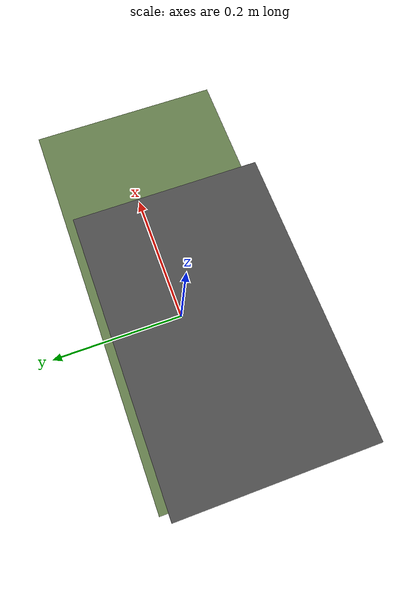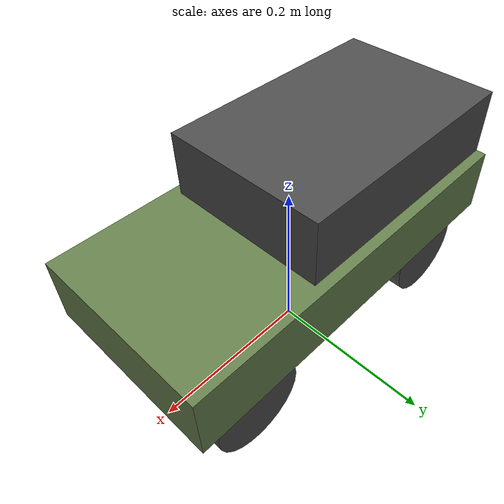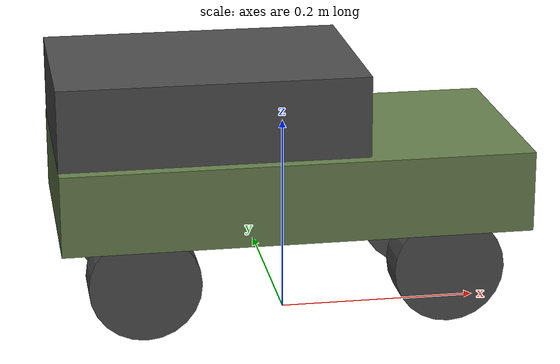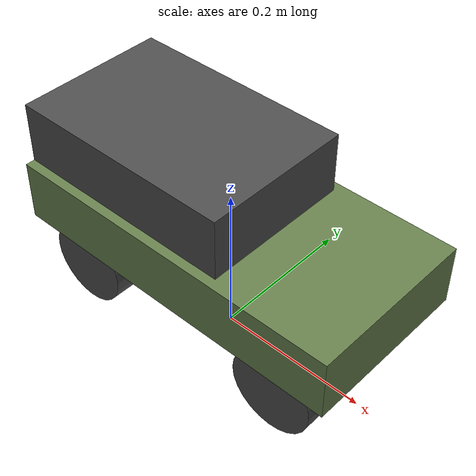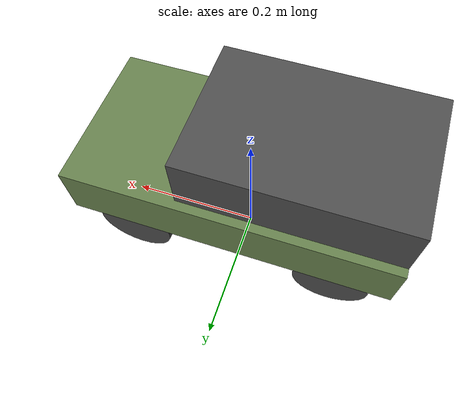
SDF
<?xml version="1.0" ?>
<sdf version="1.7">
<model name='axial_scx10'>
  <pose>0 0 0.15 0 0 0</pose>

  <link name='base_link'>
    <inertial>
        <mass>1</mass>
        <inertia>
          <ixx>0.1</ixx>
          <iyy>0.1</iyy>
          <izz>0.1</izz>
        </inertia>
      </inertial>

    <collision name='collision body'>
      <geometry>
        <box>
          <size>0.46 0.225 0.08</size>
        </box>
      </geometry>
    </collision>

    <visual name='visual body'>
      <geometry>
        <box>
          <size>0.46 0.225 0.08</size>
        </box>
      </geometry>

      <material>
        <ambient>0.3 0.4 0.2 </ambient>
        <diffuse>0.4 0.5 0.3 </diffuse>
      </material>
    </visual>

    <visual name='cage'>
      <pose>-0.08 0 0.08 0 0 0</pose>
      <geometry>
        <box>
          <size>0.3 0.2 0.08</size>
        </box>
      </geometry>

      <material>
        <script>
          <uri>file://media/materials/scripts/gazebo.material</uri>
          <name>Gazebo/DarkGrey</name>
        </script>
      </material>

    </visual>

    <collision name='collision cage'>
      <pose>-0.08 0 0.08 0 0 0</pose>
      <geometry>
        <box>
          <size>0.3 0.2 0.08</size>
        </box>
      </geometry>
    </collision>

  </link>
  <link name="front_left_strut">
    <inertial>
        <mass>0.01</mass>
        <inertia>
          <ixx>0.001</ixx>
          <iyy>0.001</iyy>
          <izz>0.001</izz>
        </inertia>
      </inertial>

    <pose>0.15 0.08 -0.08 0 0 0</pose>
  </link>

  <link name="front_left_wheel">
    <pose>0.15 0.08 -0.08 -1.5707 0 0</pose>
    <inertial>
        <mass>0.01</mass>
        <inertia>
          <ixx>0.001</ixx>
          <iyy>0.001</iyy>
          <izz>0.001</izz>
        </inertia>
      </inertial>

    <collision name="collision">
      <geometry>
        <cylinder>
          <radius>0.055</radius>
          <length>0.04</length>
        </cylinder>
      </geometry>
    </collision>

    <visual name="tire">
      <geometry>
        <cylinder>
          <radius>0.055</radius>
          <length>0.04</length>
        </cylinder>
      </geometry>
      <material>
        <script>
          <uri>file://media/materials/scripts/gazebo.material</uri>
          <name>Gazebo/DarkGrey</name>
        </script>
      </material>
    </visual>

  </link>

  <joint type="revolute" name="front_left_steer_joint">
    <parent>base_link</parent>
    <child>front_left_strut</child>
    <axis>
      <xyz>0 0 1</xyz>
      <dynamics>
        <friction>0.01</friction>
        <damping>0.01</damping>
      </dynamics>
      <limit>
        <lower>-1</lower>
        <upper>1</upper>
      </limit>
    </axis>
  </joint>

  <joint type="revolute" name="front_left_drive_joint">
    <parent>front_left_strut</parent>
    <child>front_left_wheel</child>
    <axis>
      <xyz>0 0 1</xyz>
      <dynamics>
        <friction>0.01</friction>
        <damping>0.01</damping>
      </dynamics>
    </axis>
  </joint>

  <link name="front_right_strut">
    <inertial>
        <mass>0.01</mass>
        <inertia>
          <ixx>0.001</ixx>
          <iyy>0.001</iyy>
          <izz>0.001</izz>
        </inertia>
      </inertial>

    <pose>0.15 -0.08 -0.08 0 0 0</pose>
  </link>

  <link name="front_right_wheel">
    <pose>0.15 -0.08 -0.08 -1.5707 0 0</pose>
    <inertial>
        <mass>0.01</mass>
        <inertia>
          <ixx>0.001</ixx>
          <iyy>0.001</iyy>
          <izz>0.001</izz>
        </inertia>
      </inertial>

    <collision name="collision">
      <geometry>
        <cylinder>
          <radius>0.055</radius>
          <length>0.04</length>
        </cylinder>
      </geometry>
    </collision>

    <visual name="tire">
      <geometry>
        <cylinder>
          <radius>0.055</radius>
          <length>0.04</length>
        </cylinder>
      </geometry>
      <material>
        <script>
          <uri>file://media/materials/scripts/gazebo.material</uri>
          <name>Gazebo/DarkGrey</name>
        </script>
      </material>
    </visual>

  </link>

  <joint type="revolute" name="front_right_steer_joint">
    <parent>base_link</parent>
    <child>front_right_strut</child>
    <axis>
      <xyz>0 0 1</xyz>
      <dynamics>
        <friction>0.01</friction>
        <damping>0.01</damping>
      </dynamics>
      <limit>
        <lower>-1</lower>
        <upper>1</upper>
      </limit>
    </axis>
  </joint>

  <joint type="revolute" name="front_right_drive_joint">
    <parent>front_right_strut</parent>
    <child>front_right_wheel</child>
    <axis>
      <xyz>0 0 1</xyz>
      <dynamics>
        <friction>0.01</friction>
        <damping>0.01</damping>
      </dynamics>
    </axis>
  </joint>

  <link name="rear_left_strut">
    <inertial>
        <mass>0.01</mass>
        <inertia>
          <ixx>0.001</ixx>
          <iyy>0.001</iyy>
          <izz>0.001</izz>
        </inertia>
      </inertial>

    <pose>-0.15 0.08 -0.08 0 0 0</pose>
  </link>

  <link name="rear_left_wheel">
    <pose>-0.15 0.08 -0.08 -1.5707 0 0</pose>
    <inertial>
        <mass>0.01</mass>
        <inertia>
          <ixx>0.001</ixx>
          <iyy>0.001</iyy>
          <izz>0.001</izz>
        </inertia>
      </inertial>

    <collision name="collision">
      <geometry>
        <cylinder>
          <radius>0.055</radius>
          <length>0.04</length>
        </cylinder>
      </geometry>
    </collision>

    <visual name="tire">
      <geometry>
        <cylinder>
          <radius>0.055</radius>
          <length>0.04</length>
        </cylinder>
      </geometry>
      <material>
        <script>
          <uri>file://media/materials/scripts/gazebo.material</uri>
          <name>Gazebo/DarkGrey</name>
        </script>
      </material>
    </visual>

  </link>

  <joint type="fixed" name="rear_left_steer_joint">
    <parent>base_link</parent>
    <child>rear_left_strut</child>
  </joint>

  <joint type="revolute" name="rear_left_drive_joint">
    <parent>rear_left_strut</parent>
    <child>rear_left_wheel</child>
    <axis>
      <xyz>0 0 1</xyz>
      <dynamics>
        <friction>0.01</friction>
        <damping>0.01</damping>
      </dynamics>
    </axis>
  </joint>

  <link name="rear_right_strut">
    <inertial>
        <mass>0.01</mass>
        <inertia>
          <ixx>0.001</ixx>
          <iyy>0.001</iyy>
          <izz>0.001</izz>
        </inertia>
      </inertial>

    <pose>-0.15 -0.08 -0.08 0 0 0</pose>
  </link>

  <link name="rear_right_wheel">
    <pose>-0.15 -0.08 -0.08 -1.5707 0 0</pose>
    <inertial>
        <mass>0.01</mass>
        <inertia>
          <ixx>0.001</ixx>
          <iyy>0.001</iyy>
          <izz>0.001</izz>
        </inertia>
      </inertial>

    <collision name="collision">
      <geometry>
        <cylinder>
          <radius>0.055</radius>
          <length>0.04</length>
        </cylinder>
      </geometry>
    </collision>

    <visual name="tire">
      <geometry>
        <cylinder>
          <radius>0.055</radius>
          <length>0.04</length>
        </cylinder>
      </geometry>
      <material>
        <script>
          <uri>file://media/materials/scripts/gazebo.material</uri>
          <name>Gazebo/DarkGrey</name>
        </script>
      </material>
    </visual>

  </link>

  <joint type="fixed" name="rear_right_steer_joint">
    <parent>base_link</parent>
    <child>rear_right_strut</child>
  </joint>

  <joint type="revolute" name="rear_right_drive_joint">
    <parent>rear_right_strut</parent>
    <child>rear_right_wheel</child>
    <axis>
      <xyz>0 0 1</xyz>
      <dynamics>
        <friction>0.01</friction>
        <damping>0.01</damping>
      </dynamics>
    </axis>
  </joint>

  <plugin name='p3d' filename='libgazebo_ros_p3d.so'>
    <robotNamespace>axial_scx10</robotNamespace>
    <updateRate>10</updateRate>
    <bodyName>base_link</bodyName>
    <topicName>/qualisys/axial_scx10/odom</topicName>
    <frameName>map</frameName>
    <xyzOffset>0 0 0</xyzOffset>
    <rpyOffset>0 0 0</rpyOffset>
  </plugin>

  <plugin name="ackerman" filename="libgazebo_ackerman.so">
    <robotNamespace>axial_scx10</robotNamespace>
    <debug>false</debug>
    <commandTopic>cmd_vel</commandTopic>
    <odometryTopic>odom</odometryTopic>
    <robotBaseFrame>axial_scx10</robotBaseFrame>
    <publishWheelTF>false</publishWheelTF>
    <publishOdomTF>true</publishOdomTF>
    <wheelDiameter></wheelDiameter>
    <wheelAcceleration>0.0</wheelAcceleration>
    <wheelTorque>5.0</wheelTorque>
    <updateRate>50.0</updateRate>

    <!-- Wheel Placement -->
    <wheelbase>0.3</wheelbase>
    <wheelSeparation>0.16</wheelSeparation>

    <!-- Wheel Joints -->
    <FR_steerJoint>front_right_steer_joint</FR_steerJoint>
    <FR_driveJoint>front_right_drive_joint</FR_driveJoint>
    <FL_steerJoint>front_left_steer_joint</FL_steerJoint>
    <FL_driveJoint>front_left_drive_joint</FL_driveJoint>
    <RL_steerJoint>rear_left_steer_joint</RL_steerJoint>
    <RL_driveJoint>rear_left_drive_joint</RL_driveJoint>
    <RR_steerJoint>rear_right_steer_joint</RR_steerJoint>
    <RR_driveJoint>rear_right_drive_joint</RR_driveJoint>

    <!-- Wheel Velocity PID settings -->
    <drive_p>5.0</drive_p>
    <drive_i>0.01</drive_i>
    <drive_d>0.01</drive_d>
    <drive_imax>1.0</drive_imax>
    <drive_imin>-1.0</drive_imin>
    <drive_max_effort>10.0</drive_max_effort>

    <!-- Steering PID settings -->
    <steer_p>5.0</steer_p>
    <steer_i>5.0</steer_i>
    <steer_d>0.1</steer_d>
    <steer_imax>5.0</steer_imax>
    <steer_imin>-5.0</steer_imin>
    <steer_max_effort>100.0</steer_max_effort>
    <steer_init_angle>0.3</steer_init_angle>

  </plugin>

</model>

</sdf>
<!-- vim: set et fenc=utf-8 ff=unix sts=0 sw=2 ts=2 : -->
